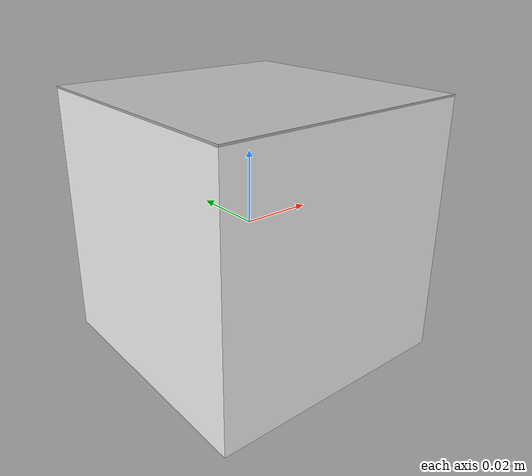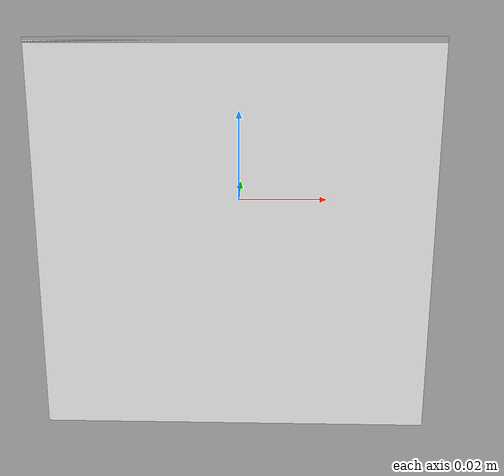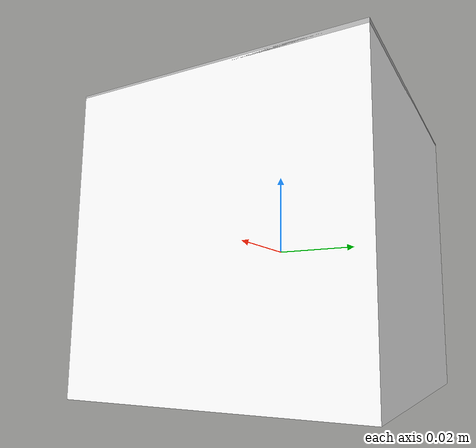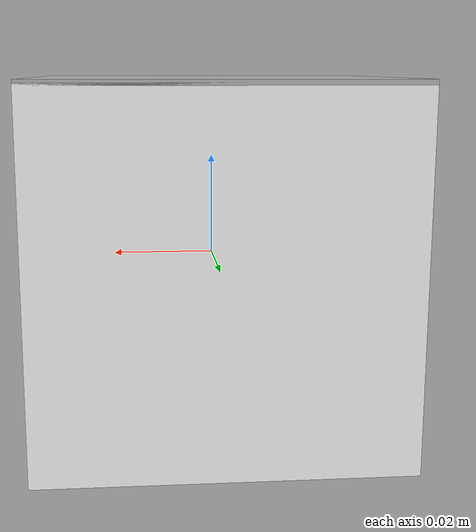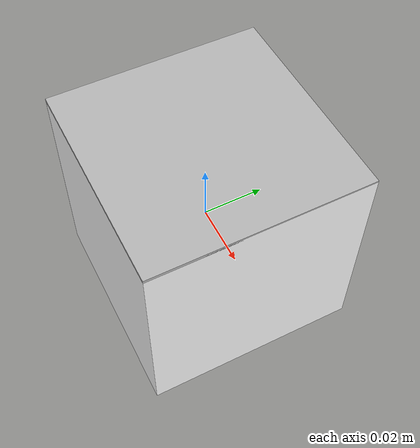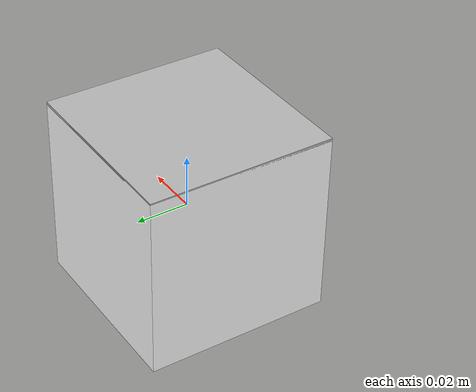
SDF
<?xml version="1.0" ?>
<sdf version="1.4">
  <model name="aruco_cube_exam_id63">
    <static>0</static>
    <link name="link">

      <inertial>
        <mass>0.05</mass>
        <inertia>
          <ixx>0.000052083</ixx>
          <ixy>0.0</ixy>
          <ixz>0.0</ixz>
          <iyy>0.000052083</iyy>
          <iyz>0.0</iyz>
          <izz>0.000020833</izz>
        </inertia>
      </inertial>

      <collision name="cube_collision">
        <geometry>
          <box>
            <size>0.07 0.07 0.07</size>
          </box>
        </geometry>

        <surface>
          <friction>
            <ode>
              <mu>40.0</mu>
              <mu2>40.0</mu2>
              <slip1>0.0</slip1>
              <slip2>0.0</slip2>
            </ode>
          </friction>
          <contact>
            <ode>
              <kp>1000000.0</kp>
              <kd>100.0</kd>
              <min_depth>0.0025</min_depth>
              <max_vel>1.0</max_vel>
            </ode>
          </contact>
        </surface>

      </collision>

      <!-- Original pick surface visual -->
      <visual name="cube_visual">
        <material>
          <ambient>1 1 1 1</ambient>
          <diffuse>1 1 1 1</diffuse>
          <specular>0.5 0.5 0.5 1</specular>
          <emissive>0 0 0 1</emissive>
        </material>
        <geometry>
          <box>
            <size>0.07 0.07 0.07</size>
          </box>
        </geometry>
      </visual>

      <!-- ArUco marker mounted on one lateral side (+X face) -->
      <!-- Box visual for the marker -->
      <visual name="aruco_visual">
        <pose>0.0 0.0 0.035 0 0 0</pose>
        <geometry>
          <box>
            <size>0.07 0.07 0.001</size>
          </box>
        </geometry>
        <material>
          <script>
          <uri>model://aruco_marker_original_63/material/scripts</uri>
          <uri>model://aruco_marker_original_63/material/textures</uri>
                <name>Aruco/aruco_marker_original_63</name>
          </script>
        </material>
      </visual>

      <velocity_decay>
        <linear>0.000000</linear>
        <angular>0.000000</angular>
      </velocity_decay>
      <self_collide>0</self_collide>
      <kinematic>0</kinematic>
      <gravity>1</gravity>
    </link>
  </model>
</sdf>
